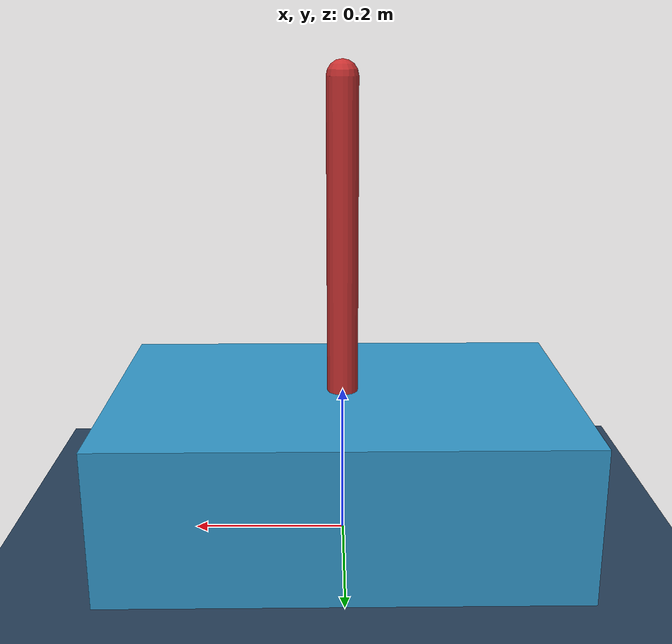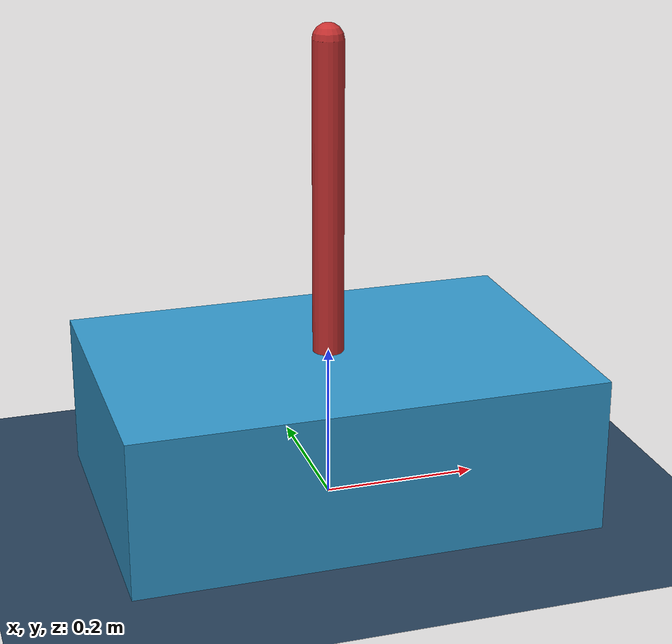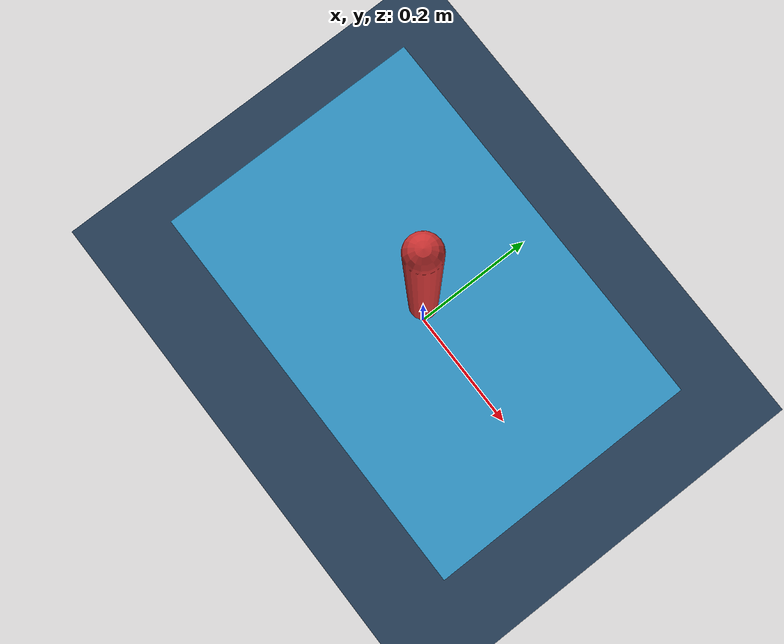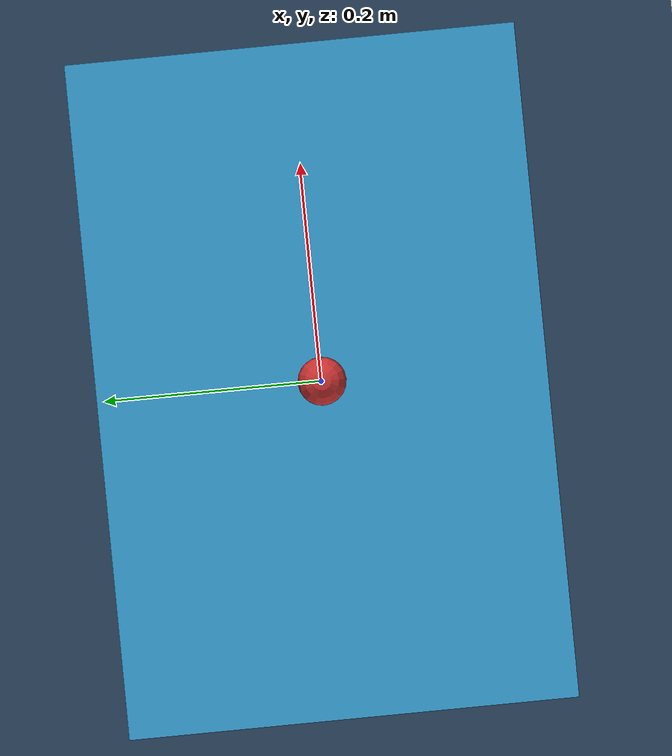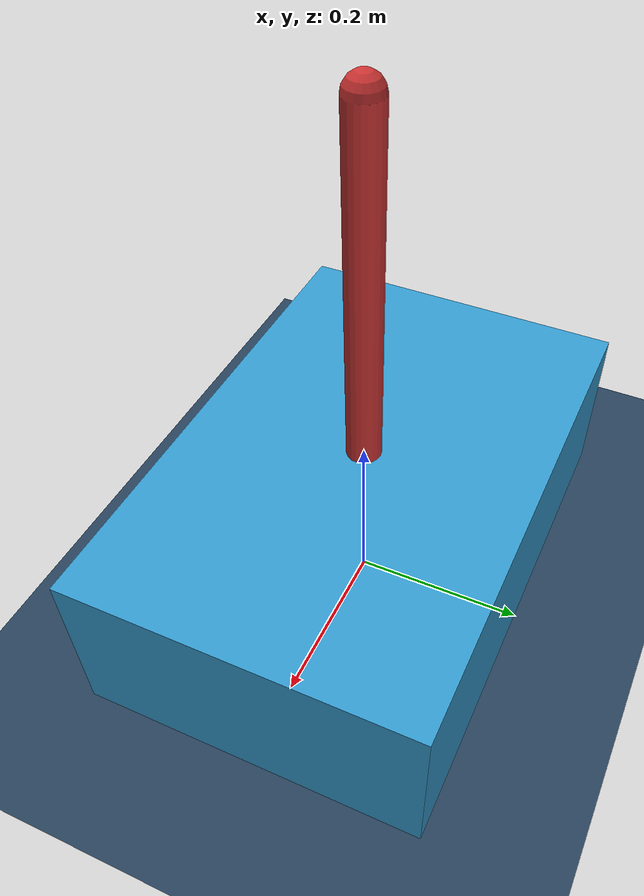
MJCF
<mujoco model="invert pendulum">
     <asset>
    <texture type="2d" name="groundplane" builtin="checker"
             rgb1="0.2 0.3 0.4" rgb2="0.1 0.2 0.3"
             markrgb="0.8 0.8 0.8" width="300" height="300"/>
    <material name="mat_ground" texture="groundplane" texuniform="true"
              texrepeat="5 5" reflectance="0"/>
</asset>
     <compiler coordinate="local" inertiafromgeom="true"/>
  <option timestep="0.002" gravity="0 0 -9.81"/>
  <worldbody>
      <light name="top_light"
       pos="0 0 5"
       dir="0 0 -1"
       diffuse="1 1 1"
       specular="0.5 0.5 0.5"
       castshadow="false"/>
      <geom name="floor" type="plane" size="0 0 0.05" material="mat_ground"/>
    <body name="cart" pos="0 0 0.1">
      <joint name="slider" type="slide" axis="1 0 0" pos="0 0 0" limited="true"  range="-5 5" damping = "0.1"/>
      <geom name="cart" type="box" size="0.3 0.2 0.1" mass="0.5" rgba="0.2 0.6 0.8 1"/>
      <site name="cart_site" pos="0 0 0"/>
      <body name="pole" pos="0 0 0">
        <joint name="hinge" type="hinge" axis="0 1 0" pos="0 0 0"/>
        <geom name="pole" type="capsule" fromto="0 0 0 0 0 0.5" size="0.02" mass="0.1" rgba="0.8 0.2 0.2 1"/>
        <site name="tip_site" pos="0 0 0.5"/>
      </body>
    </body>
  </worldbody>
<actuator>
    <motor name="motor" joint="slider" gear="10" ctrllimited="true" ctrlrange="-10 10"/>
  </actuator>
    <sensor>
    <jointpos name="cart_pos" joint="slider"/>
    <jointvel name="cart_vel" joint="slider"/>
    <jointpos name="pole_angle" joint="hinge"/>
    <jointvel name="pole_angvel" joint="hinge"/>
  </sensor>
</mujoco>
